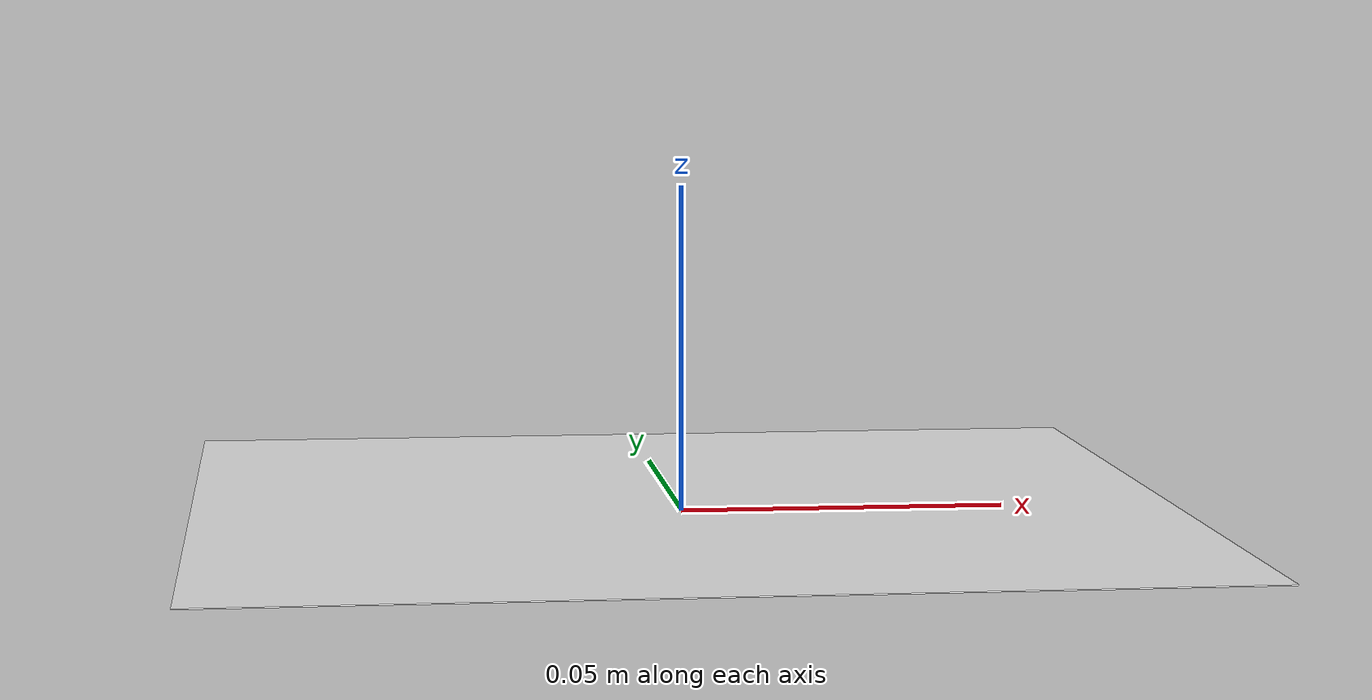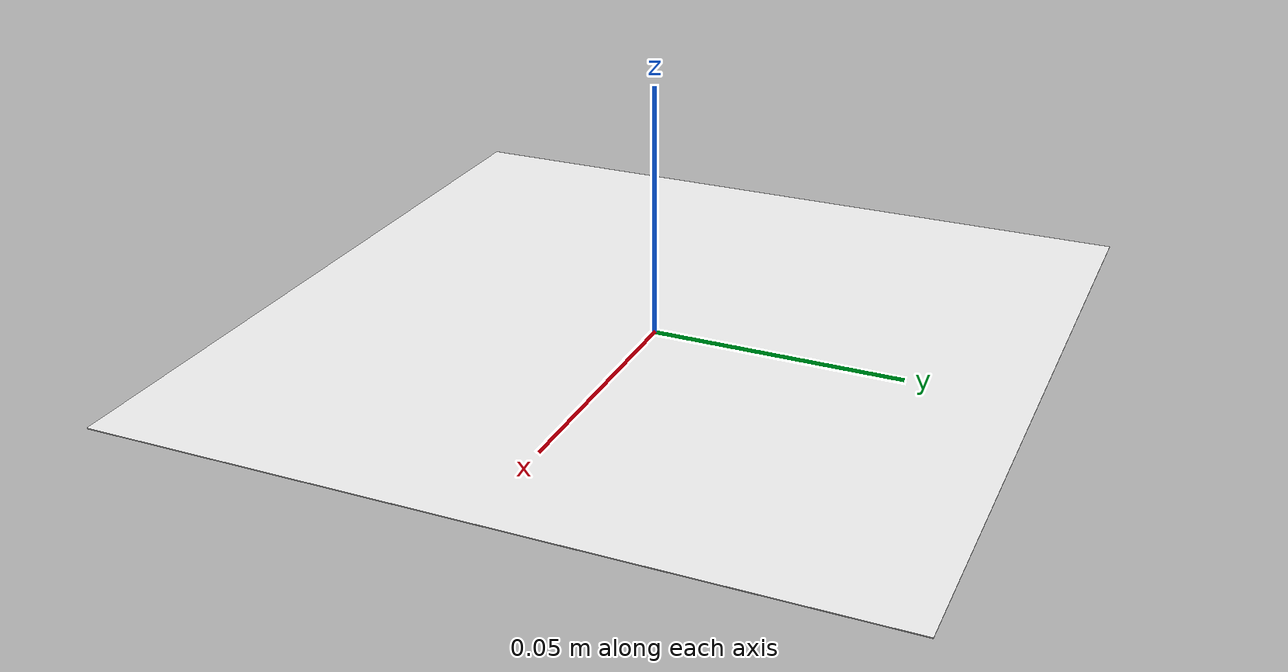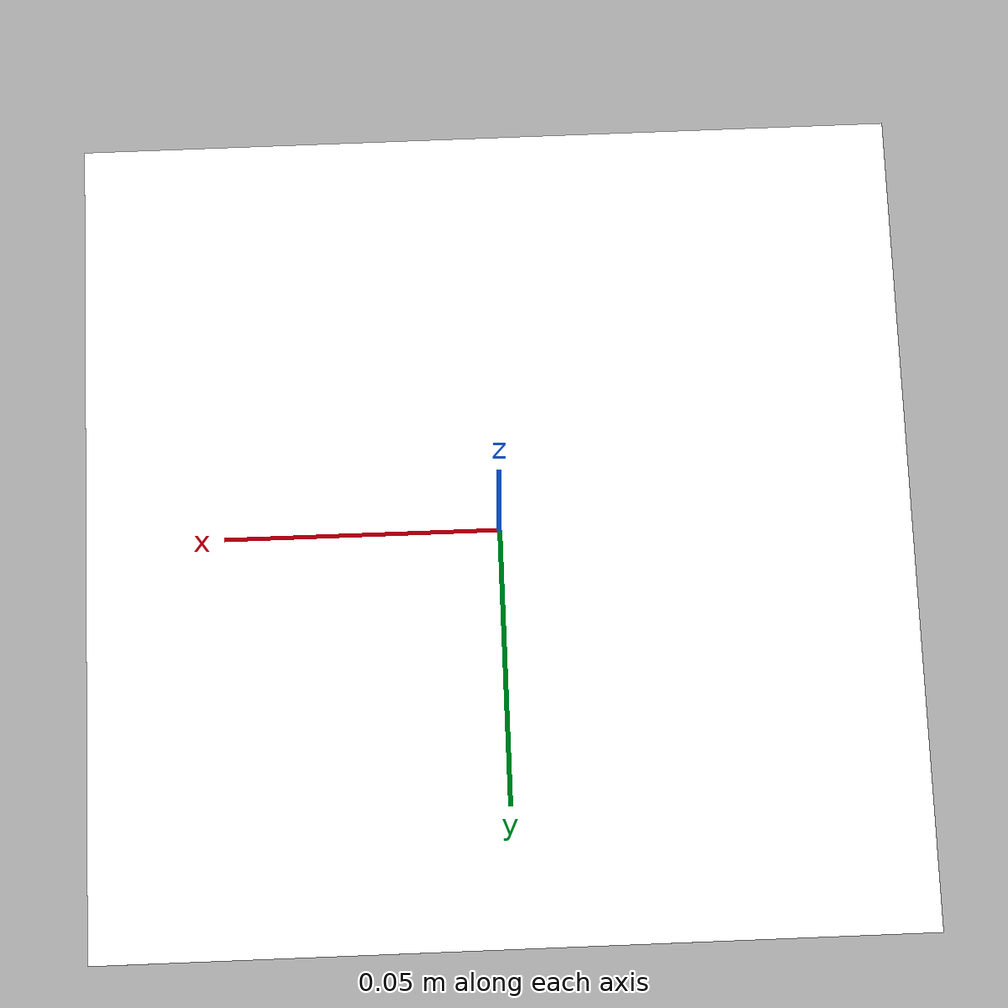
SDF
<?xml version="1.0" ?>
<sdf version="1.8">
  <model name="apriltag_marker">
    <static>true</static>
    <link name="link">
      <!-- Thin plane sitting on the ground, just above z=0 to avoid z-fighting -->
      <visual name="tag_visual">
        <pose>0 0 0.001 0 0 0</pose>
        <geometry>
          <plane>
            <normal>0 0 1</normal>
            <size>0.15 0.15</size>
          </plane>
        </geometry>
        <material>
          <ambient>1 1 1 1</ambient>
          <diffuse>1 1 1 1</diffuse>
          <pbr>
            <metal>
              <albedo_map>model://apriltag_marker/materials/textures/tag36h11_0.png</albedo_map>
              <metalness>0</metalness>
              <roughness>1</roughness>
            </metal>
          </pbr>
        </material>
      </visual>
      <collision name="tag_collision">
        <pose>0 0 0.001 0 0 0</pose>
        <geometry>
          <box>
            <size>0.15 0.15 0.002</size>
          </box>
        </geometry>
      </collision>
    </link>
  </model>
</sdf>
